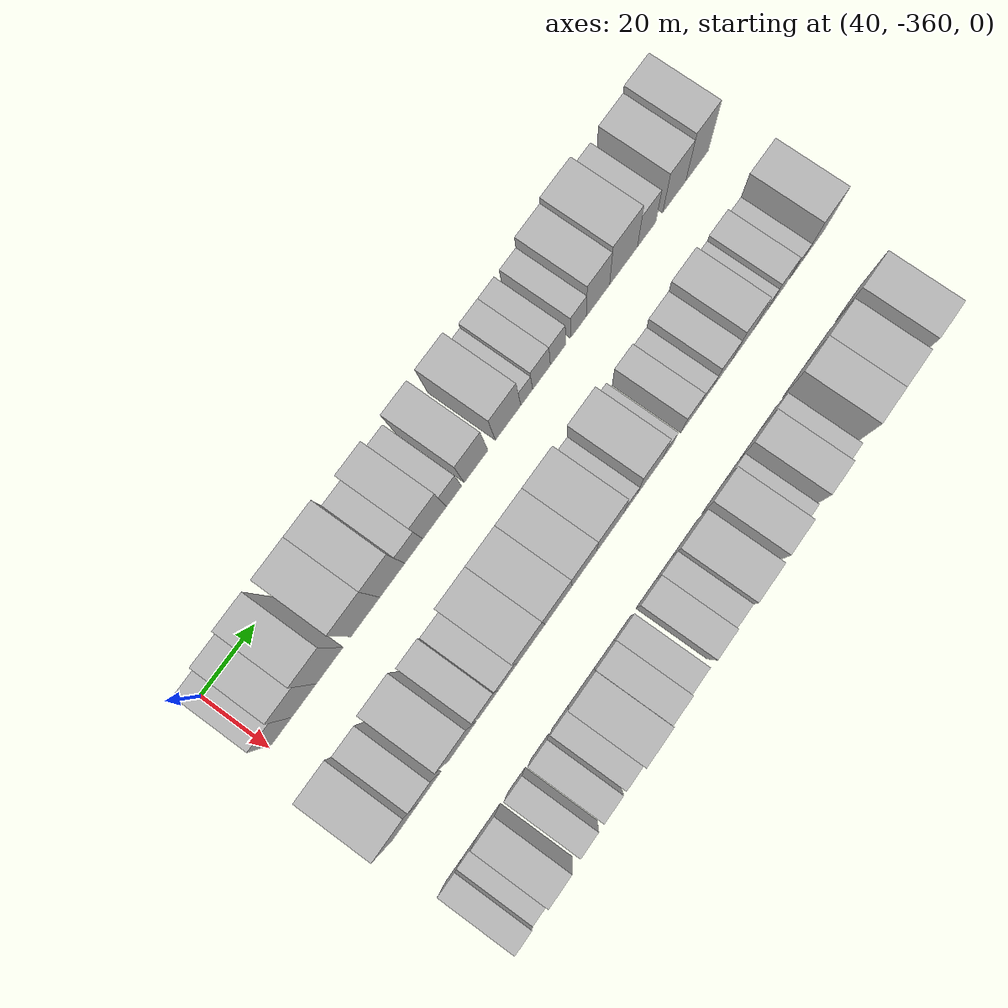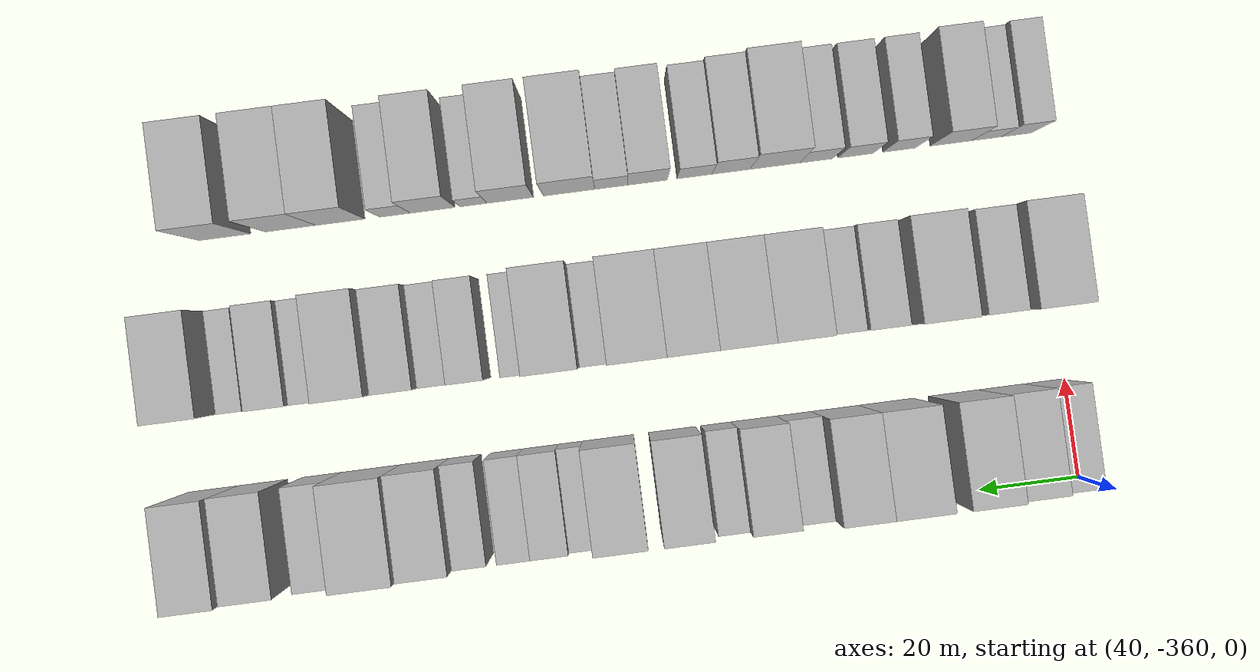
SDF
<sdf version="1.6">
 <world name="default">
  <model name="building_1">
   <static>1</static>
   <pose>50.0000 -355.2860 0 0.000000 0.000000 0.000000</pose>
   <link name="link">
    <pose>0 0 9.00 0 0 0</pose>
    <collision name="collision"><geometry><box><size>20.0000 7.4280 18.0000</size></box></geometry></collision>
    <visual name="visual">
     <cast_shadows>0</cast_shadows>
     <geometry><box><size>20.0000 7.4280 18.0000</size></box></geometry>
     <material>
      <script>
       <uri>model://HANNAS_wall/materials/scripts</uri>
       <uri>model://HANNAS_wall/materials/textures</uri>
       <name>vrc/HANNAS_wall</name>
      </script>
     </material>
    </visual>
   </link>
  </model>
  <model name="building_2">
   <static>1</static>
   <pose>50.0000 -346.9435 0 0.000000 0.000000 0.000000</pose>
   <link name="link">
    <pose>0 0 10.50 0 0 0</pose>
    <collision name="collision"><geometry><box><size>20.0000 9.2570 21.0000</size></box></geometry></collision>
    <visual name="visual">
     <cast_shadows>0</cast_shadows>
     <geometry><box><size>20.0000 9.2570 21.0000</size></box></geometry>
     <material>
      <script>
       <uri>model://HANNAS_wall/materials/scripts</uri>
       <uri>model://HANNAS_wall/materials/textures</uri>
       <name>vrc/HANNAS_wall</name>
      </script>
     </material>
    </visual>
   </link>
  </model>
  <model name="building_3">
   <static>1</static>
   <pose>50.0000 -337.2721 0 0.000000 0.000000 0.000000</pose>
   <link name="link">
    <pose>0 0 12.00 0 0 0</pose>
    <collision name="collision"><geometry><box><size>20.0000 10.0858 24.0000</size></box></geometry></collision>
    <visual name="visual">
     <cast_shadows>0</cast_shadows>
     <geometry><box><size>20.0000 10.0858 24.0000</size></box></geometry>
     <material>
      <script>
       <uri>model://HANNAS_wall/materials/scripts</uri>
       <uri>model://HANNAS_wall/materials/textures</uri>
       <name>vrc/HANNAS_wall</name>
      </script>
     </material>
    </visual>
   </link>
  </model>
  <model name="building_4">
   <static>1</static>
   <pose>50.0000 -323.6632 0 0.000000 0.000000 0.000000</pose>
   <link name="link">
    <pose>0 0 12.00 0 0 0</pose>
    <collision name="collision"><geometry><box><size>20.0000 11.1321 24.0000</size></box></geometry></collision>
    <visual name="visual">
     <cast_shadows>0</cast_shadows>
     <geometry><box><size>20.0000 11.1321 24.0000</size></box></geometry>
     <material>
      <script>
       <uri>model://HANNAS_wall/materials/scripts</uri>
       <uri>model://HANNAS_wall/materials/textures</uri>
       <name>vrc/HANNAS_wall</name>
      </script>
     </material>
    </visual>
   </link>
  </model>
  <model name="building_5">
   <static>1</static>
   <pose>50.0000 -313.2683 0 0.000000 0.000000 0.000000</pose>
   <link name="link">
    <pose>0 0 12.00 0 0 0</pose>
    <collision name="collision"><geometry><box><size>20.0000 9.6578 24.0000</size></box></geometry></collision>
    <visual name="visual">
     <cast_shadows>0</cast_shadows>
     <geometry><box><size>20.0000 9.6578 24.0000</size></box></geometry>
     <material>
      <script>
       <uri>model://HANNAS_wall/materials/scripts</uri>
       <uri>model://HANNAS_wall/materials/textures</uri>
       <name>vrc/HANNAS_wall</name>
      </script>
     </material>
    </visual>
   </link>
  </model>
  <model name="building_6">
   <static>1</static>
   <pose>50.0000 -304.9249 0 0.000000 0.000000 0.000000</pose>
   <link name="link">
    <pose>0 0 7.50 0 0 0</pose>
    <collision name="collision"><geometry><box><size>20.0000 7.0290 15.0000</size></box></geometry></collision>
    <visual name="visual">
     <cast_shadows>0</cast_shadows>
     <geometry><box><size>20.0000 7.0290 15.0000</size></box></geometry>
     <material>
      <script>
       <uri>model://HANNAS_wall/materials/scripts</uri>
       <uri>model://HANNAS_wall/materials/textures</uri>
       <name>vrc/HANNAS_wall</name>
      </script>
     </material>
    </visual>
   </link>
  </model>
  <model name="building_7">
   <static>1</static>
   <pose>50.0000 -296.7540 0 0.000000 0.000000 0.000000</pose>
   <link name="link">
    <pose>0 0 10.50 0 0 0</pose>
    <collision name="collision"><geometry><box><size>20.0000 9.3128 21.0000</size></box></geometry></collision>
    <visual name="visual">
     <cast_shadows>0</cast_shadows>
     <geometry><box><size>20.0000 9.3128 21.0000</size></box></geometry>
     <material>
      <script>
       <uri>model://HANNAS_wall/materials/scripts</uri>
       <uri>model://HANNAS_wall/materials/textures</uri>
       <name>vrc/HANNAS_wall</name>
      </script>
     </material>
    </visual>
   </link>
  </model>
  <model name="building_8">
   <static>1</static>
   <pose>50.0000 -289.0511 0 0.000000 0.000000 0.000000</pose>
   <link name="link">
    <pose>0 0 7.50 0 0 0</pose>
    <collision name="collision"><geometry><box><size>20.0000 6.0931 15.0000</size></box></geometry></collision>
    <visual name="visual">
     <cast_shadows>0</cast_shadows>
     <geometry><box><size>20.0000 6.0931 15.0000</size></box></geometry>
     <material>
      <script>
       <uri>model://HANNAS_wall/materials/scripts</uri>
       <uri>model://HANNAS_wall/materials/textures</uri>
       <name>vrc/HANNAS_wall</name>
      </script>
     </material>
    </visual>
   </link>
  </model>
  <model name="building_9">
   <static>1</static>
   <pose>50.0000 -280.2438 0 0.000000 0.000000 0.000000</pose>
   <link name="link">
    <pose>0 0 10.50 0 0 0</pose>
    <collision name="collision"><geometry><box><size>20.0000 9.5215 21.0000</size></box></geometry></collision>
    <visual name="visual">
     <cast_shadows>0</cast_shadows>
     <geometry><box><size>20.0000 9.5215 21.0000</size></box></geometry>
     <material>
      <script>
       <uri>model://HANNAS_wall/materials/scripts</uri>
       <uri>model://HANNAS_wall/materials/textures</uri>
       <name>vrc/HANNAS_wall</name>
      </script>
     </material>
    </visual>
   </link>
  </model>
  <model name="building_10">
   <static>1</static>
   <pose>50.0000 -267.3015 0 0.000000 0.000000 0.000000</pose>
   <link name="link">
    <pose>0 0 10.50 0 0 0</pose>
    <collision name="collision"><geometry><box><size>20.0000 10.3630 21.0000</size></box></geometry></collision>
    <visual name="visual">
     <cast_shadows>0</cast_shadows>
     <geometry><box><size>20.0000 10.3630 21.0000</size></box></geometry>
     <material>
      <script>
       <uri>model://HANNAS_wall/materials/scripts</uri>
       <uri>model://HANNAS_wall/materials/textures</uri>
       <name>vrc/HANNAS_wall</name>
      </script>
     </material>
    </visual>
   </link>
  </model>
  <model name="building_11">
   <static>1</static>
   <pose>50.0000 -259.7067 0 0.000000 0.000000 0.000000</pose>
   <link name="link">
    <pose>0 0 6.00 0 0 0</pose>
    <collision name="collision"><geometry><box><size>20.0000 4.8265 12.0000</size></box></geometry></collision>
    <visual name="visual">
     <cast_shadows>0</cast_shadows>
     <geometry><box><size>20.0000 4.8265 12.0000</size></box></geometry>
     <material>
      <script>
       <uri>model://HANNAS_wall/materials/scripts</uri>
       <uri>model://HANNAS_wall/materials/textures</uri>
       <name>vrc/HANNAS_wall</name>
      </script>
     </material>
    </visual>
   </link>
  </model>
  <model name="building_12">
   <static>1</static>
   <pose>50.0000 -253.6373 0 0.000000 0.000000 0.000000</pose>
   <link name="link">
    <pose>0 0 7.50 0 0 0</pose>
    <collision name="collision"><geometry><box><size>20.0000 7.3124 15.0000</size></box></geometry></collision>
    <visual name="visual">
     <cast_shadows>0</cast_shadows>
     <geometry><box><size>20.0000 7.3124 15.0000</size></box></geometry>
     <material>
      <script>
       <uri>model://HANNAS_wall/materials/scripts</uri>
       <uri>model://HANNAS_wall/materials/textures</uri>
       <name>vrc/HANNAS_wall</name>
      </script>
     </material>
    </visual>
   </link>
  </model>
  <model name="building_13">
   <static>1</static>
   <pose>50.0000 -246.7971 0 0.000000 0.000000 0.000000</pose>
   <link name="link">
    <pose>0 0 7.50 0 0 0</pose>
    <collision name="collision"><geometry><box><size>20.0000 6.3680 15.0000</size></box></geometry></collision>
    <visual name="visual">
     <cast_shadows>0</cast_shadows>
     <geometry><box><size>20.0000 6.3680 15.0000</size></box></geometry>
     <material>
      <script>
       <uri>model://HANNAS_wall/materials/scripts</uri>
       <uri>model://HANNAS_wall/materials/textures</uri>
       <name>vrc/HANNAS_wall</name>
      </script>
     </material>
    </visual>
   </link>
  </model>
  <model name="building_14">
   <static>1</static>
   <pose>50.0000 -238.3296 0 0.000000 0.000000 0.000000</pose>
   <link name="link">
    <pose>0 0 7.50 0 0 0</pose>
    <collision name="collision"><geometry><box><size>20.0000 6.5668 15.0000</size></box></geometry></collision>
    <visual name="visual">
     <cast_shadows>0</cast_shadows>
     <geometry><box><size>20.0000 6.5668 15.0000</size></box></geometry>
     <material>
      <script>
       <uri>model://HANNAS_wall/materials/scripts</uri>
       <uri>model://HANNAS_wall/materials/textures</uri>
       <name>vrc/HANNAS_wall</name>
      </script>
     </material>
    </visual>
   </link>
  </model>
  <model name="building_15">
   <static>1</static>
   <pose>50.0000 -230.1281 0 0.000000 0.000000 0.000000</pose>
   <link name="link">
    <pose>0 0 10.50 0 0 0</pose>
    <collision name="collision"><geometry><box><size>20.0000 9.8362 21.0000</size></box></geometry></collision>
    <visual name="visual">
     <cast_shadows>0</cast_shadows>
     <geometry><box><size>20.0000 9.8362 21.0000</size></box></geometry>
     <material>
      <script>
       <uri>model://HANNAS_wall/materials/scripts</uri>
       <uri>model://HANNAS_wall/materials/textures</uri>
       <name>vrc/HANNAS_wall</name>
      </script>
     </material>
    </visual>
   </link>
  </model>
  <model name="building_16">
   <static>1</static>
   <pose>50.0000 -219.2534 0 0.000000 0.000000 0.000000</pose>
   <link name="link">
    <pose>0 0 12.00 0 0 0</pose>
    <collision name="collision"><geometry><box><size>20.0000 11.9132 24.0000</size></box></geometry></collision>
    <visual name="visual">
     <cast_shadows>0</cast_shadows>
     <geometry><box><size>20.0000 11.9132 24.0000</size></box></geometry>
     <material>
      <script>
       <uri>model://HANNAS_wall/materials/scripts</uri>
       <uri>model://HANNAS_wall/materials/textures</uri>
       <name>vrc/HANNAS_wall</name>
      </script>
     </material>
    </visual>
   </link>
  </model>
  <model name="building_17">
   <static>1</static>
   <pose>50.0000 -209.3277 0 0.000000 0.000000 0.000000</pose>
   <link name="link">
    <pose>0 0 9.00 0 0 0</pose>
    <collision name="collision"><geometry><box><size>20.0000 7.9382 18.0000</size></box></geometry></collision>
    <visual name="visual">
     <cast_shadows>0</cast_shadows>
     <geometry><box><size>20.0000 7.9382 18.0000</size></box></geometry>
     <material>
      <script>
       <uri>model://HANNAS_wall/materials/scripts</uri>
       <uri>model://HANNAS_wall/materials/textures</uri>
       <name>vrc/HANNAS_wall</name>
      </script>
     </material>
    </visual>
   </link>
  </model>
  <model name="building_18">
   <static>1</static>
   <pose>50.0000 -197.3633 0 0.000000 0.000000 0.000000</pose>
   <link name="link">
    <pose>0 0 10.50 0 0 0</pose>
    <collision name="collision"><geometry><box><size>20.0000 9.9906 21.0000</size></box></geometry></collision>
    <visual name="visual">
     <cast_shadows>0</cast_shadows>
     <geometry><box><size>20.0000 9.9906 21.0000</size></box></geometry>
     <material>
      <script>
       <uri>model://HANNAS_wall/materials/scripts</uri>
       <uri>model://HANNAS_wall/materials/textures</uri>
       <name>vrc/HANNAS_wall</name>
      </script>
     </material>
    </visual>
   </link>
  </model>
  <model name="building_19">
   <static>1</static>
   <pose>50.0000 -187.3950 0 0.000000 0.000000 0.000000</pose>
   <link name="link">
    <pose>0 0 12.00 0 0 0</pose>
    <collision name="collision"><geometry><box><size>20.0000 9.9459 24.0000</size></box></geometry></collision>
    <visual name="visual">
     <cast_shadows>0</cast_shadows>
     <geometry><box><size>20.0000 9.9459 24.0000</size></box></geometry>
     <material>
      <script>
       <uri>model://HANNAS_wall/materials/scripts</uri>
       <uri>model://HANNAS_wall/materials/textures</uri>
       <name>vrc/HANNAS_wall</name>
      </script>
     </material>
    </visual>
   </link>
  </model>
  <model name="building_79">
   <static>1</static>
   <pose>85.0000 -354.7068 0 0.000000 0.000000 0.000000</pose>
   <link name="link">
    <pose>0 0 12.00 0 0 0</pose>
    <collision name="collision"><geometry><box><size>20.0000 10.5864 24.0000</size></box></geometry></collision>
    <visual name="visual">
     <cast_shadows>0</cast_shadows>
     <geometry><box><size>20.0000 10.5864 24.0000</size></box></geometry>
     <material>
      <script>
       <uri>model://HANNAS_wall/materials/scripts</uri>
       <uri>model://HANNAS_wall/materials/textures</uri>
       <name>vrc/HANNAS_wall</name>
      </script>
     </material>
    </visual>
   </link>
  </model>
  <model name="building_80">
   <static>1</static>
   <pose>85.0000 -345.4796 0 0.000000 0.000000 0.000000</pose>
   <link name="link">
    <pose>0 0 9.00 0 0 0</pose>
    <collision name="collision"><geometry><box><size>20.0000 7.8680 18.0000</size></box></geometry></collision>
    <visual name="visual">
     <cast_shadows>0</cast_shadows>
     <geometry><box><size>20.0000 7.8680 18.0000</size></box></geometry>
     <material>
      <script>
       <uri>model://HANNAS_wall/materials/scripts</uri>
       <uri>model://HANNAS_wall/materials/textures</uri>
       <name>vrc/HANNAS_wall</name>
      </script>
     </material>
    </visual>
   </link>
  </model>
  <model name="building_81">
   <static>1</static>
   <pose>85.0000 -333.2357 0 0.000000 0.000000 0.000000</pose>
   <link name="link">
    <pose>0 0 12.00 0 0 0</pose>
    <collision name="collision"><geometry><box><size>20.0000 10.6198 24.0000</size></box></geometry></collision>
    <visual name="visual">
     <cast_shadows>0</cast_shadows>
     <geometry><box><size>20.0000 10.6198 24.0000</size></box></geometry>
     <material>
      <script>
       <uri>model://HANNAS_wall/materials/scripts</uri>
       <uri>model://HANNAS_wall/materials/textures</uri>
       <name>vrc/HANNAS_wall</name>
      </script>
     </material>
    </visual>
   </link>
  </model>
  <model name="building_82">
   <static>1</static>
   <pose>85.0000 -323.0554 0 0.000000 0.000000 0.000000</pose>
   <link name="link">
    <pose>0 0 9.00 0 0 0</pose>
    <collision name="collision"><geometry><box><size>20.0000 7.7408 18.0000</size></box></geometry></collision>
    <visual name="visual">
     <cast_shadows>0</cast_shadows>
     <geometry><box><size>20.0000 7.7408 18.0000</size></box></geometry>
     <material>
      <script>
       <uri>model://HANNAS_wall/materials/scripts</uri>
       <uri>model://HANNAS_wall/materials/textures</uri>
       <name>vrc/HANNAS_wall</name>
      </script>
     </material>
    </visual>
   </link>
  </model>
  <model name="building_83">
   <static>1</static>
   <pose>85.0000 -315.4797 0 0.000000 0.000000 0.000000</pose>
   <link name="link">
    <pose>0 0 7.50 0 0 0</pose>
    <collision name="collision"><geometry><box><size>20.0000 7.4107 15.0000</size></box></geometry></collision>
    <visual name="visual">
     <cast_shadows>0</cast_shadows>
     <geometry><box><size>20.0000 7.4107 15.0000</size></box></geometry>
     <material>
      <script>
       <uri>model://HANNAS_wall/materials/scripts</uri>
       <uri>model://HANNAS_wall/materials/textures</uri>
       <name>vrc/HANNAS_wall</name>
      </script>
     </material>
    </visual>
   </link>
  </model>
  <model name="building_84">
   <static>1</static>
   <pose>85.0000 -306.3395 0 0.000000 0.000000 0.000000</pose>
   <link name="link">
    <pose>0 0 12.00 0 0 0</pose>
    <collision name="collision"><geometry><box><size>20.0000 10.8697 24.0000</size></box></geometry></collision>
    <visual name="visual">
     <cast_shadows>0</cast_shadows>
     <geometry><box><size>20.0000 10.8697 24.0000</size></box></geometry>
     <material>
      <script>
       <uri>model://HANNAS_wall/materials/scripts</uri>
       <uri>model://HANNAS_wall/materials/textures</uri>
       <name>vrc/HANNAS_wall</name>
      </script>
     </material>
    </visual>
   </link>
  </model>
  <model name="building_85">
   <static>1</static>
   <pose>85.0000 -295.5923 0 0.000000 0.000000 0.000000</pose>
   <link name="link">
    <pose>0 0 12.00 0 0 0</pose>
    <collision name="collision"><geometry><box><size>20.0000 10.6248 24.0000</size></box></geometry></collision>
    <visual name="visual">
     <cast_shadows>0</cast_shadows>
     <geometry><box><size>20.0000 10.6248 24.0000</size></box></geometry>
     <material>
      <script>
       <uri>model://HANNAS_wall/materials/scripts</uri>
       <uri>model://HANNAS_wall/materials/textures</uri>
       <name>vrc/HANNAS_wall</name>
      </script>
     </material>
    </visual>
   </link>
  </model>
  <model name="building_86">
   <static>1</static>
   <pose>85.0000 -285.3707 0 0.000000 0.000000 0.000000</pose>
   <link name="link">
    <pose>0 0 12.00 0 0 0</pose>
    <collision name="collision"><geometry><box><size>20.0000 9.8184 24.0000</size></box></geometry></collision>
    <visual name="visual">
     <cast_shadows>0</cast_shadows>
     <geometry><box><size>20.0000 9.8184 24.0000</size></box></geometry>
     <material>
      <script>
       <uri>model://HANNAS_wall/materials/scripts</uri>
       <uri>model://HANNAS_wall/materials/textures</uri>
       <name>vrc/HANNAS_wall</name>
      </script>
     </material>
    </visual>
   </link>
  </model>
  <model name="building_87">
   <static>1</static>
   <pose>85.0000 -274.8560 0 0.000000 0.000000 0.000000</pose>
   <link name="link">
    <pose>0 0 12.00 0 0 0</pose>
    <collision name="collision"><geometry><box><size>20.0000 11.2108 24.0000</size></box></geometry></collision>
    <visual name="visual">
     <cast_shadows>0</cast_shadows>
     <geometry><box><size>20.0000 11.2108 24.0000</size></box></geometry>
     <material>
      <script>
       <uri>model://HANNAS_wall/materials/scripts</uri>
       <uri>model://HANNAS_wall/materials/textures</uri>
       <name>vrc/HANNAS_wall</name>
      </script>
     </material>
    </visual>
   </link>
  </model>
  <model name="building_88">
   <static>1</static>
   <pose>85.0000 -266.5485 0 0.000000 0.000000 0.000000</pose>
   <link name="link">
    <pose>0 0 6.00 0 0 0</pose>
    <collision name="collision"><geometry><box><size>20.0000 5.4044 12.0000</size></box></geometry></collision>
    <visual name="visual">
     <cast_shadows>0</cast_shadows>
     <geometry><box><size>20.0000 5.4044 12.0000</size></box></geometry>
     <material>
      <script>
       <uri>model://HANNAS_wall/materials/scripts</uri>
       <uri>model://HANNAS_wall/materials/textures</uri>
       <name>vrc/HANNAS_wall</name>
      </script>
     </material>
    </visual>
   </link>
  </model>
  <model name="building_89">
   <static>1</static>
   <pose>85.0000 -258.5695 0 0.000000 0.000000 0.000000</pose>
   <link name="link">
    <pose>0 0 12.00 0 0 0</pose>
    <collision name="collision"><geometry><box><size>20.0000 10.5536 24.0000</size></box></geometry></collision>
    <visual name="visual">
     <cast_shadows>0</cast_shadows>
     <geometry><box><size>20.0000 10.5536 24.0000</size></box></geometry>
     <material>
      <script>
       <uri>model://HANNAS_wall/materials/scripts</uri>
       <uri>model://HANNAS_wall/materials/textures</uri>
       <name>vrc/HANNAS_wall</name>
      </script>
     </material>
    </visual>
   </link>
  </model>
  <model name="building_90">
   <static>1</static>
   <pose>85.0000 -250.8722 0 0.000000 0.000000 0.000000</pose>
   <link name="link">
    <pose>0 0 6.00 0 0 0</pose>
    <collision name="collision"><geometry><box><size>20.0000 4.8410 12.0000</size></box></geometry></collision>
    <visual name="visual">
     <cast_shadows>0</cast_shadows>
     <geometry><box><size>20.0000 4.8410 12.0000</size></box></geometry>
     <material>
      <script>
       <uri>model://HANNAS_wall/materials/scripts</uri>
       <uri>model://HANNAS_wall/materials/textures</uri>
       <name>vrc/HANNAS_wall</name>
      </script>
     </material>
    </visual>
   </link>
  </model>
  <model name="building_91">
   <static>1</static>
   <pose>85.0000 -241.8413 0 0.000000 0.000000 0.000000</pose>
   <link name="link">
    <pose>0 0 7.50 0 0 0</pose>
    <collision name="collision"><geometry><box><size>20.0000 7.2208 15.0000</size></box></geometry></collision>
    <visual name="visual">
     <cast_shadows>0</cast_shadows>
     <geometry><box><size>20.0000 7.2208 15.0000</size></box></geometry>
     <material>
      <script>
       <uri>model://HANNAS_wall/materials/scripts</uri>
       <uri>model://HANNAS_wall/materials/textures</uri>
       <name>vrc/HANNAS_wall</name>
      </script>
     </material>
    </visual>
   </link>
  </model>
  <model name="building_92">
   <static>1</static>
   <pose>85.0000 -235.2764 0 0.000000 0.000000 0.000000</pose>
   <link name="link">
    <pose>0 0 6.00 0 0 0</pose>
    <collision name="collision"><geometry><box><size>20.0000 5.9089 12.0000</size></box></geometry></collision>
    <visual name="visual">
     <cast_shadows>0</cast_shadows>
     <geometry><box><size>20.0000 5.9089 12.0000</size></box></geometry>
     <material>
      <script>
       <uri>model://HANNAS_wall/materials/scripts</uri>
       <uri>model://HANNAS_wall/materials/textures</uri>
       <name>vrc/HANNAS_wall</name>
      </script>
     </material>
    </visual>
   </link>
  </model>
  <model name="building_93">
   <static>1</static>
   <pose>85.0000 -228.3103 0 0.000000 0.000000 0.000000</pose>
   <link name="link">
    <pose>0 0 9.00 0 0 0</pose>
    <collision name="collision"><geometry><box><size>20.0000 8.0233 18.0000</size></box></geometry></collision>
    <visual name="visual">
     <cast_shadows>0</cast_shadows>
     <geometry><box><size>20.0000 8.0233 18.0000</size></box></geometry>
     <material>
      <script>
       <uri>model://HANNAS_wall/materials/scripts</uri>
       <uri>model://HANNAS_wall/materials/textures</uri>
       <name>vrc/HANNAS_wall</name>
      </script>
     </material>
    </visual>
   </link>
  </model>
  <model name="building_94">
   <static>1</static>
   <pose>85.0000 -219.4035 0 0.000000 0.000000 0.000000</pose>
   <link name="link">
    <pose>0 0 12.00 0 0 0</pose>
    <collision name="collision"><geometry><box><size>20.0000 9.7904 24.0000</size></box></geometry></collision>
    <visual name="visual">
     <cast_shadows>0</cast_shadows>
     <geometry><box><size>20.0000 9.7904 24.0000</size></box></geometry>
     <material>
      <script>
       <uri>model://HANNAS_wall/materials/scripts</uri>
       <uri>model://HANNAS_wall/materials/textures</uri>
       <name>vrc/HANNAS_wall</name>
      </script>
     </material>
    </visual>
   </link>
  </model>
  <model name="building_95">
   <static>1</static>
   <pose>85.0000 -211.3507 0 0.000000 0.000000 0.000000</pose>
   <link name="link">
    <pose>0 0 7.50 0 0 0</pose>
    <collision name="collision"><geometry><box><size>20.0000 6.3152 15.0000</size></box></geometry></collision>
    <visual name="visual">
     <cast_shadows>0</cast_shadows>
     <geometry><box><size>20.0000 6.3152 15.0000</size></box></geometry>
     <material>
      <script>
       <uri>model://HANNAS_wall/materials/scripts</uri>
       <uri>model://HANNAS_wall/materials/textures</uri>
       <name>vrc/HANNAS_wall</name>
      </script>
     </material>
    </visual>
   </link>
  </model>
  <model name="building_96">
   <static>1</static>
   <pose>85.0000 -204.3153 0 0.000000 0.000000 0.000000</pose>
   <link name="link">
    <pose>0 0 9.00 0 0 0</pose>
    <collision name="collision"><geometry><box><size>20.0000 7.7556 18.0000</size></box></geometry></collision>
    <visual name="visual">
     <cast_shadows>0</cast_shadows>
     <geometry><box><size>20.0000 7.7556 18.0000</size></box></geometry>
     <material>
      <script>
       <uri>model://HANNAS_wall/materials/scripts</uri>
       <uri>model://HANNAS_wall/materials/textures</uri>
       <name>vrc/HANNAS_wall</name>
      </script>
     </material>
    </visual>
   </link>
  </model>
  <model name="building_97">
   <static>1</static>
   <pose>85.0000 -195.9130 0 0.000000 0.000000 0.000000</pose>
   <link name="link">
    <pose>0 0 6.00 0 0 0</pose>
    <collision name="collision"><geometry><box><size>20.0000 5.0490 12.0000</size></box></geometry></collision>
    <visual name="visual">
     <cast_shadows>0</cast_shadows>
     <geometry><box><size>20.0000 5.0490 12.0000</size></box></geometry>
     <material>
      <script>
       <uri>model://HANNAS_wall/materials/scripts</uri>
       <uri>model://HANNAS_wall/materials/textures</uri>
       <name>vrc/HANNAS_wall</name>
      </script>
     </material>
    </visual>
   </link>
  </model>
  <model name="building_98">
   <static>1</static>
   <pose>85.0000 -188.1852 0 0.000000 0.000000 0.000000</pose>
   <link name="link">
    <pose>0 0 12.00 0 0 0</pose>
    <collision name="collision"><geometry><box><size>20.0000 10.4067 24.0000</size></box></geometry></collision>
    <visual name="visual">
     <cast_shadows>0</cast_shadows>
     <geometry><box><size>20.0000 10.4067 24.0000</size></box></geometry>
     <material>
      <script>
       <uri>model://HANNAS_wall/materials/scripts</uri>
       <uri>model://HANNAS_wall/materials/textures</uri>
       <name>vrc/HANNAS_wall</name>
      </script>
     </material>
    </visual>
   </link>
  </model>
  <model name="building_155">
   <static>1</static>
   <pose>120.0000 -356.9049 0 0.000000 0.000000 0.000000</pose>
   <link name="link">
    <pose>0 0 7.50 0 0 0</pose>
    <collision name="collision"><geometry><box><size>20.0000 6.1901 15.0000</size></box></geometry></collision>
    <visual name="visual">
     <cast_shadows>0</cast_shadows>
     <geometry><box><size>20.0000 6.1901 15.0000</size></box></geometry>
     <material>
      <script>
       <uri>model://HANNAS_wall/materials/scripts</uri>
       <uri>model://HANNAS_wall/materials/textures</uri>
       <name>vrc/HANNAS_wall</name>
      </script>
     </material>
    </visual>
   </link>
  </model>
  <model name="building_156">
   <static>1</static>
   <pose>120.0000 -350.8230 0 0.000000 0.000000 0.000000</pose>
   <link name="link">
    <pose>0 0 6.00 0 0 0</pose>
    <collision name="collision"><geometry><box><size>20.0000 5.9737 12.0000</size></box></geometry></collision>
    <visual name="visual">
     <cast_shadows>0</cast_shadows>
     <geometry><box><size>20.0000 5.9737 12.0000</size></box></geometry>
     <material>
      <script>
       <uri>model://HANNAS_wall/materials/scripts</uri>
       <uri>model://HANNAS_wall/materials/textures</uri>
       <name>vrc/HANNAS_wall</name>
      </script>
     </material>
    </visual>
   </link>
  </model>
  <model name="building_157">
   <static>1</static>
   <pose>120.0000 -343.6004 0 0.000000 0.000000 0.000000</pose>
   <link name="link">
    <pose>0 0 9.00 0 0 0</pose>
    <collision name="collision"><geometry><box><size>20.0000 8.4715 18.0000</size></box></geometry></collision>
    <visual name="visual">
     <cast_shadows>0</cast_shadows>
     <geometry><box><size>20.0000 8.4715 18.0000</size></box></geometry>
     <material>
      <script>
       <uri>model://HANNAS_wall/materials/scripts</uri>
       <uri>model://HANNAS_wall/materials/textures</uri>
       <name>vrc/HANNAS_wall</name>
      </script>
     </material>
    </visual>
   </link>
  </model>
  <model name="building_158">
   <static>1</static>
   <pose>120.0000 -333.0420 0 0.000000 0.000000 0.000000</pose>
   <link name="link">
    <pose>0 0 7.50 0 0 0</pose>
    <collision name="collision"><geometry><box><size>20.0000 6.6453 15.0000</size></box></geometry></collision>
    <visual name="visual">
     <cast_shadows>0</cast_shadows>
     <geometry><box><size>20.0000 6.6453 15.0000</size></box></geometry>
     <material>
      <script>
       <uri>model://HANNAS_wall/materials/scripts</uri>
       <uri>model://HANNAS_wall/materials/textures</uri>
       <name>vrc/HANNAS_wall</name>
      </script>
     </material>
    </visual>
   </link>
  </model>
  <model name="building_159">
   <static>1</static>
   <pose>120.0000 -324.1213 0 0.000000 0.000000 0.000000</pose>
   <link name="link">
    <pose>0 0 7.50 0 0 0</pose>
    <collision name="collision"><geometry><box><size>20.0000 7.1961 15.0000</size></box></geometry></collision>
    <visual name="visual">
     <cast_shadows>0</cast_shadows>
     <geometry><box><size>20.0000 7.1961 15.0000</size></box></geometry>
     <material>
      <script>
       <uri>model://HANNAS_wall/materials/scripts</uri>
       <uri>model://HANNAS_wall/materials/textures</uri>
       <name>vrc/HANNAS_wall</name>
      </script>
     </material>
    </visual>
   </link>
  </model>
  <model name="building_160">
   <static>1</static>
   <pose>120.0000 -316.1702 0 0.000000 0.000000 0.000000</pose>
   <link name="link">
    <pose>0 0 7.50 0 0 0</pose>
    <collision name="collision"><geometry><box><size>20.0000 6.7063 15.0000</size></box></geometry></collision>
    <visual name="visual">
     <cast_shadows>0</cast_shadows>
     <geometry><box><size>20.0000 6.7063 15.0000</size></box></geometry>
     <material>
      <script>
       <uri>model://HANNAS_wall/materials/scripts</uri>
       <uri>model://HANNAS_wall/materials/textures</uri>
       <name>vrc/HANNAS_wall</name>
      </script>
     </material>
    </visual>
   </link>
  </model>
  <model name="building_161">
   <static>1</static>
   <pose>120.0000 -307.7207 0 0.000000 0.000000 0.000000</pose>
   <link name="link">
    <pose>0 0 10.50 0 0 0</pose>
    <collision name="collision"><geometry><box><size>20.0000 10.1926 21.0000</size></box></geometry></collision>
    <visual name="visual">
     <cast_shadows>0</cast_shadows>
     <geometry><box><size>20.0000 10.1926 21.0000</size></box></geometry>
     <material>
      <script>
       <uri>model://HANNAS_wall/materials/scripts</uri>
       <uri>model://HANNAS_wall/materials/textures</uri>
       <name>vrc/HANNAS_wall</name>
      </script>
     </material>
    </visual>
   </link>
  </model>
  <model name="building_162">
   <static>1</static>
   <pose>120.0000 -298.7549 0 0.000000 0.000000 0.000000</pose>
   <link name="link">
    <pose>0 0 9.00 0 0 0</pose>
    <collision name="collision"><geometry><box><size>20.0000 7.7390 18.0000</size></box></geometry></collision>
    <visual name="visual">
     <cast_shadows>0</cast_shadows>
     <geometry><box><size>20.0000 7.7390 18.0000</size></box></geometry>
     <material>
      <script>
       <uri>model://HANNAS_wall/materials/scripts</uri>
       <uri>model://HANNAS_wall/materials/textures</uri>
       <name>vrc/HANNAS_wall</name>
      </script>
     </material>
    </visual>
   </link>
  </model>
  <model name="building_163">
   <static>1</static>
   <pose>120.0000 -291.3450 0 0.000000 0.000000 0.000000</pose>
   <link name="link">
    <pose>0 0 7.50 0 0 0</pose>
    <collision name="collision"><geometry><box><size>20.0000 7.0810 15.0000</size></box></geometry></collision>
    <visual name="visual">
     <cast_shadows>0</cast_shadows>
     <geometry><box><size>20.0000 7.0810 15.0000</size></box></geometry>
     <material>
      <script>
       <uri>model://HANNAS_wall/materials/scripts</uri>
       <uri>model://HANNAS_wall/materials/textures</uri>
       <name>vrc/HANNAS_wall</name>
      </script>
     </material>
    </visual>
   </link>
  </model>
  <model name="building_164">
   <static>1</static>
   <pose>120.0000 -281.7710 0 0.000000 0.000000 0.000000</pose>
   <link name="link">
    <pose>0 0 9.00 0 0 0</pose>
    <collision name="collision"><geometry><box><size>20.0000 8.0669 18.0000</size></box></geometry></collision>
    <visual name="visual">
     <cast_shadows>0</cast_shadows>
     <geometry><box><size>20.0000 8.0669 18.0000</size></box></geometry>
     <material>
      <script>
       <uri>model://HANNAS_wall/materials/scripts</uri>
       <uri>model://HANNAS_wall/materials/textures</uri>
       <name>vrc/HANNAS_wall</name>
      </script>
     </material>
    </visual>
   </link>
  </model>
  <model name="building_165">
   <static>1</static>
   <pose>120.0000 -274.4101 0 0.000000 0.000000 0.000000</pose>
   <link name="link">
    <pose>0 0 7.50 0 0 0</pose>
    <collision name="collision"><geometry><box><size>20.0000 6.6549 15.0000</size></box></geometry></collision>
    <visual name="visual">
     <cast_shadows>0</cast_shadows>
     <geometry><box><size>20.0000 6.6549 15.0000</size></box></geometry>
     <material>
      <script>
       <uri>model://HANNAS_wall/materials/scripts</uri>
       <uri>model://HANNAS_wall/materials/textures</uri>
       <name>vrc/HANNAS_wall</name>
      </script>
     </material>
    </visual>
   </link>
  </model>
  <model name="building_166">
   <static>1</static>
   <pose>120.0000 -265.8575 0 0.000000 0.000000 0.000000</pose>
   <link name="link">
    <pose>0 0 10.50 0 0 0</pose>
    <collision name="collision"><geometry><box><size>20.0000 10.4503 21.0000</size></box></geometry></collision>
    <visual name="visual">
     <cast_shadows>0</cast_shadows>
     <geometry><box><size>20.0000 10.4503 21.0000</size></box></geometry>
     <material>
      <script>
       <uri>model://HANNAS_wall/materials/scripts</uri>
       <uri>model://HANNAS_wall/materials/textures</uri>
       <name>vrc/HANNAS_wall</name>
      </script>
     </material>
    </visual>
   </link>
  </model>
  <model name="building_167">
   <static>1</static>
   <pose>120.0000 -253.9183 0 0.000000 0.000000 0.000000</pose>
   <link name="link">
    <pose>0 0 10.50 0 0 0</pose>
    <collision name="collision"><geometry><box><size>20.0000 9.4283 21.0000</size></box></geometry></collision>
    <visual name="visual">
     <cast_shadows>0</cast_shadows>
     <geometry><box><size>20.0000 9.4283 21.0000</size></box></geometry>
     <material>
      <script>
       <uri>model://HANNAS_wall/materials/scripts</uri>
       <uri>model://HANNAS_wall/materials/textures</uri>
       <name>vrc/HANNAS_wall</name>
      </script>
     </material>
    </visual>
   </link>
  </model>
  <model name="building_168">
   <static>1</static>
   <pose>120.0000 -246.4407 0 0.000000 0.000000 0.000000</pose>
   <link name="link">
    <pose>0 0 6.00 0 0 0</pose>
    <collision name="collision"><geometry><box><size>20.0000 5.5270 12.0000</size></box></geometry></collision>
    <visual name="visual">
     <cast_shadows>0</cast_shadows>
     <geometry><box><size>20.0000 5.5270 12.0000</size></box></geometry>
     <material>
      <script>
       <uri>model://HANNAS_wall/materials/scripts</uri>
       <uri>model://HANNAS_wall/materials/textures</uri>
       <name>vrc/HANNAS_wall</name>
      </script>
     </material>
    </visual>
   </link>
  </model>
  <model name="building_169">
   <static>1</static>
   <pose>120.0000 -238.1252 0 0.000000 0.000000 0.000000</pose>
   <link name="link">
    <pose>0 0 10.50 0 0 0</pose>
    <collision name="collision"><geometry><box><size>20.0000 9.1041 21.0000</size></box></geometry></collision>
    <visual name="visual">
     <cast_shadows>0</cast_shadows>
     <geometry><box><size>20.0000 9.1041 21.0000</size></box></geometry>
     <material>
      <script>
       <uri>model://HANNAS_wall/materials/scripts</uri>
       <uri>model://HANNAS_wall/materials/textures</uri>
       <name>vrc/HANNAS_wall</name>
      </script>
     </material>
    </visual>
   </link>
  </model>
  <model name="building_170">
   <static>1</static>
   <pose>120.0000 -230.4430 0 0.000000 0.000000 0.000000</pose>
   <link name="link">
    <pose>0 0 7.50 0 0 0</pose>
    <collision name="collision"><geometry><box><size>20.0000 6.2602 15.0000</size></box></geometry></collision>
    <visual name="visual">
     <cast_shadows>0</cast_shadows>
     <geometry><box><size>20.0000 6.2602 15.0000</size></box></geometry>
     <material>
      <script>
       <uri>model://HANNAS_wall/materials/scripts</uri>
       <uri>model://HANNAS_wall/materials/textures</uri>
       <name>vrc/HANNAS_wall</name>
      </script>
     </material>
    </visual>
   </link>
  </model>
  <model name="building_171">
   <static>1</static>
   <pose>120.0000 -219.3456 0 0.000000 0.000000 0.000000</pose>
   <link name="link">
    <pose>0 0 12.00 0 0 0</pose>
    <collision name="collision"><geometry><box><size>20.0000 9.9348 24.0000</size></box></geometry></collision>
    <visual name="visual">
     <cast_shadows>0</cast_shadows>
     <geometry><box><size>20.0000 9.9348 24.0000</size></box></geometry>
     <material>
      <script>
       <uri>model://HANNAS_wall/materials/scripts</uri>
       <uri>model://HANNAS_wall/materials/textures</uri>
       <name>vrc/HANNAS_wall</name>
      </script>
     </material>
    </visual>
   </link>
  </model>
  <model name="building_172">
   <static>1</static>
   <pose>120.0000 -209.2334 0 0.000000 0.000000 0.000000</pose>
   <link name="link">
    <pose>0 0 12.00 0 0 0</pose>
    <collision name="collision"><geometry><box><size>20.0000 10.2895 24.0000</size></box></geometry></collision>
    <visual name="visual">
     <cast_shadows>0</cast_shadows>
     <geometry><box><size>20.0000 10.2895 24.0000</size></box></geometry>
     <material>
      <script>
       <uri>model://HANNAS_wall/materials/scripts</uri>
       <uri>model://HANNAS_wall/materials/textures</uri>
       <name>vrc/HANNAS_wall</name>
      </script>
     </material>
    </visual>
   </link>
  </model>
  <model name="building_173">
   <static>1</static>
   <pose>120.0000 -195.8476 0 0.000000 0.000000 0.000000</pose>
   <link name="link">
    <pose>0 0 12.00 0 0 0</pose>
    <collision name="collision"><geometry><box><size>20.0000 10.4820 24.0000</size></box></geometry></collision>
    <visual name="visual">
     <cast_shadows>0</cast_shadows>
     <geometry><box><size>20.0000 10.4820 24.0000</size></box></geometry>
     <material>
      <script>
       <uri>model://HANNAS_wall/materials/scripts</uri>
       <uri>model://HANNAS_wall/materials/textures</uri>
       <name>vrc/HANNAS_wall</name>
      </script>
     </material>
    </visual>
   </link>
  </model>
 </world>
</sdf>
